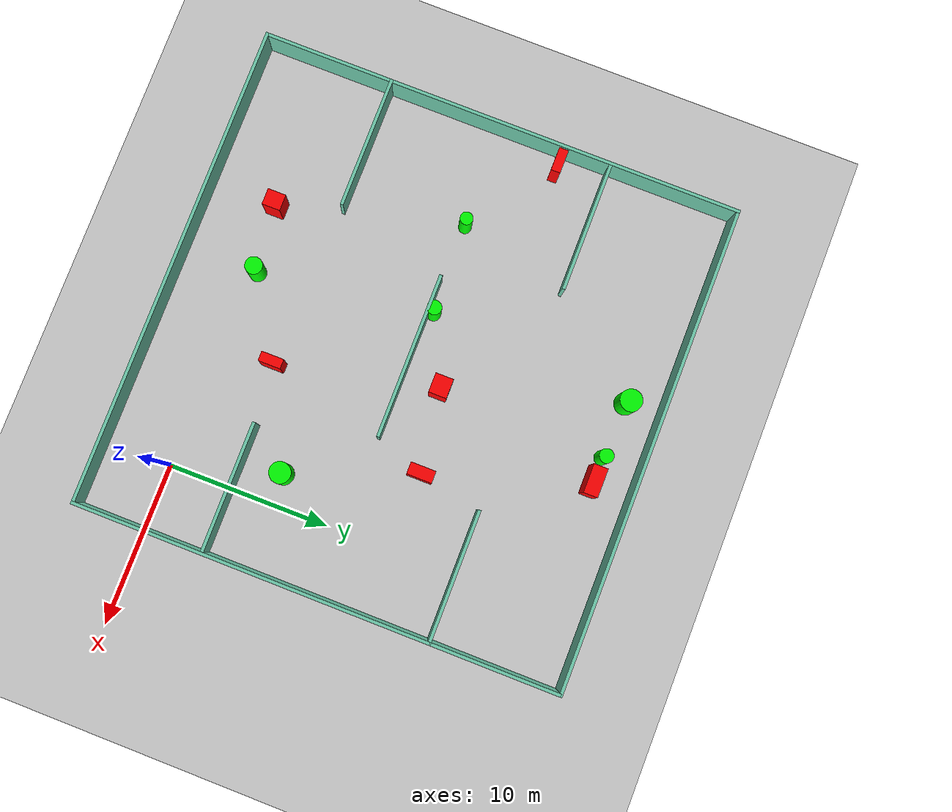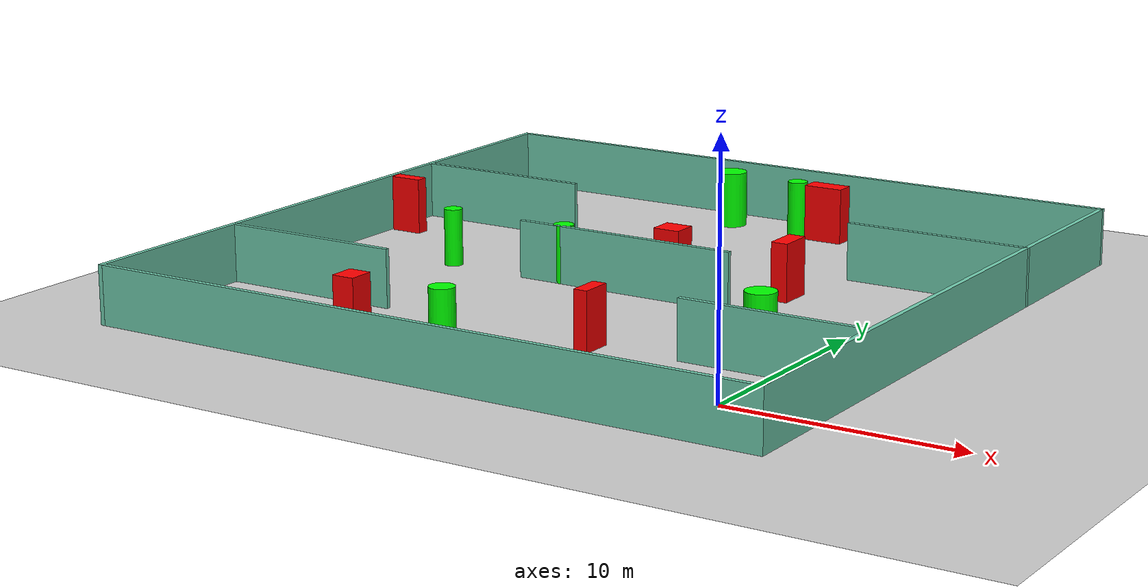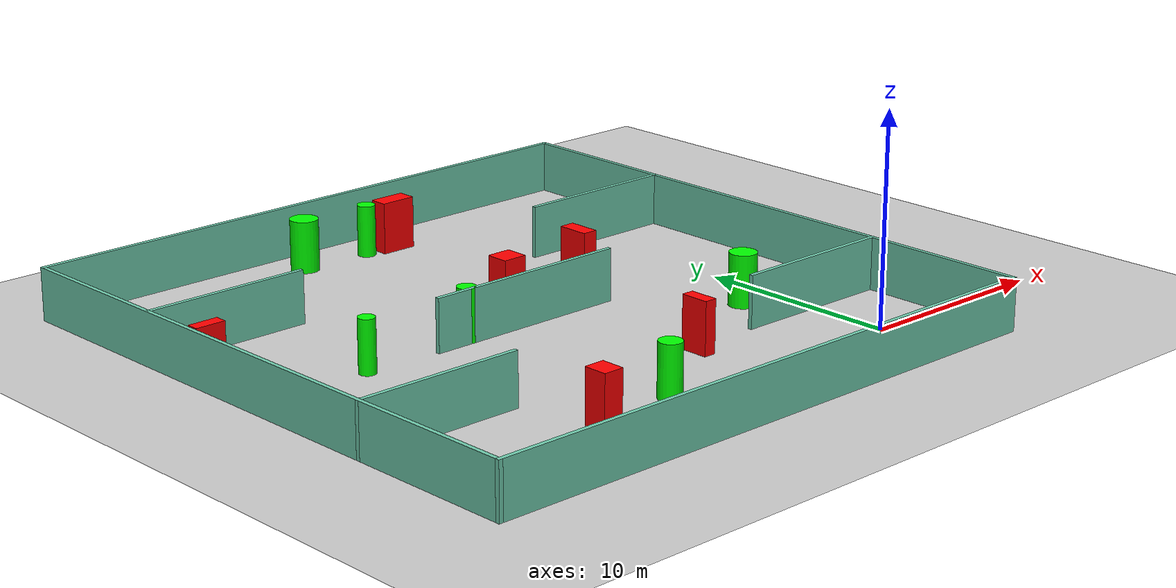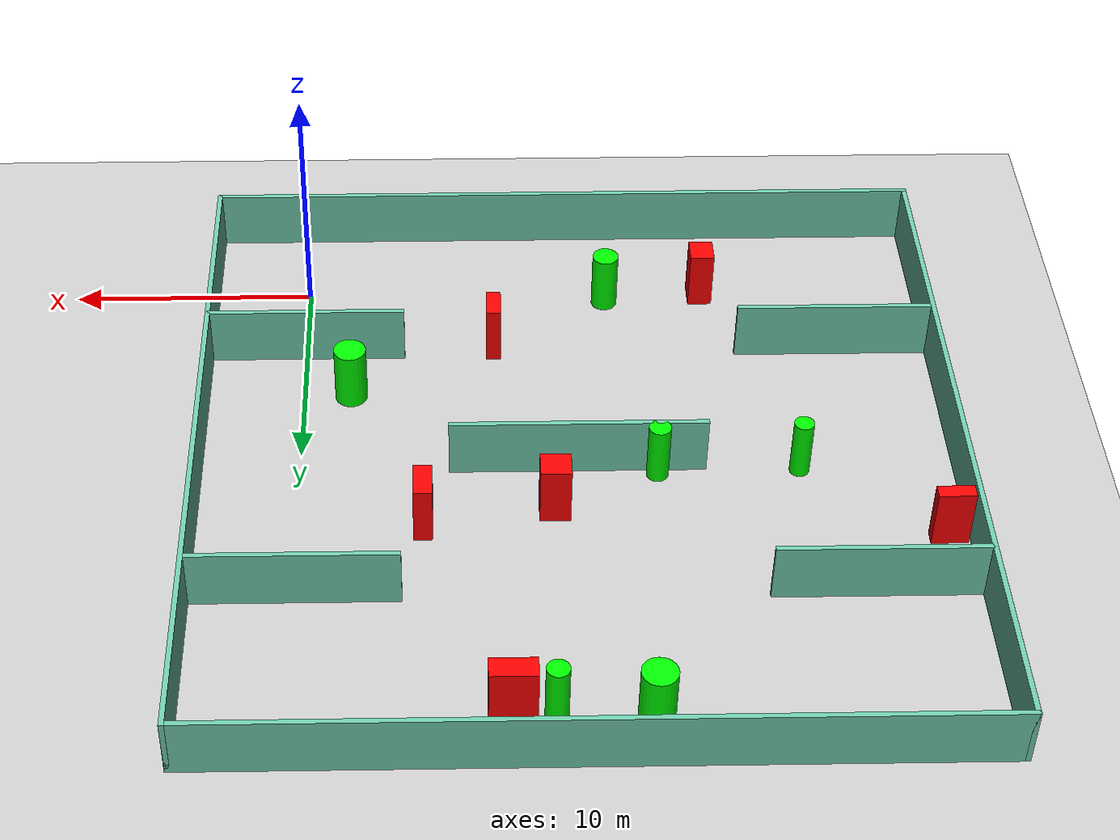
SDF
<sdf version="1.7">
 <world name="default">
  <light name="sun" type="directional">
   <pose>0 0 10 0 -0 0</pose>
   <diffuse>0.8 0.8 0.8 1</diffuse>
   <specular>0.2 0.2 0.2 1</specular>
   <attenuation>
    <range>1000</range>
    <constant>0.9</constant>
    <linear>0.01</linear>
    <quadratic>0.001</quadratic>
   </attenuation>
   <direction>-0.5 0.1 -0.9</direction>
   <spot><inner_angle>0</inner_angle><outer_angle>0</outer_angle><falloff>0</falloff></spot>
  </light>
  <model name="ground_plane">
   <static>1</static>
   <link name="link">
    <collision name="collision">
     <geometry><plane><normal>0 0 1</normal><size>100 100</size></plane></geometry>
     <surface>
      <contact><collide_bitmask>65535</collide_bitmask></contact>
      <friction><ode><mu>100</mu><mu2>50</mu2></ode></friction>
     </surface>
    </collision>
    <visual name="visual">
     <cast_shadows>0</cast_shadows>
     <geometry><plane><normal>0 0 1</normal><size>100 100</size></plane></geometry>
     <material>
      <script><uri>file://media/materials/scripts/gazebo.material</uri><name>Gazebo/Grey</name></script>
     </material>
    </visual>
   </link>
  </model>
  <gravity>0 0 -9.8</gravity>
  <magnetic_field>6e-06 2.3e-05 -4.2e-05</magnetic_field>
  <atmosphere type="adiabatic"/>
  <physics type="ode">
   <max_step_size>0.001</max_step_size>
   <real_time_factor>1</real_time_factor>
   <real_time_update_rate>1000</real_time_update_rate>
  </physics>
  <scene><ambient>0.4 0.4 0.4 1</ambient><background>0.7 0.7 0.7 1</background><shadows>1</shadows></scene>
  <spherical_coordinates>
   <surface_model>EARTH_WGS84</surface_model>
   <latitude_deg>0</latitude_deg>
   <longitude_deg>0</longitude_deg>
   <elevation>0</elevation>
   <heading_deg>0</heading_deg>
  </spherical_coordinates>
  <model name="my_base_walls">
   <link name="Wall_10">
    <collision name="Wall_10_Collision">
     <geometry><box><size>8.2 0.2 2.5</size></box></geometry>
     <pose>0 0 1.25 0 -0 0</pose>
    </collision>
    <visual name="Wall_10_Visual">
     <pose>0 0 1.25 0 -0 0</pose>
     <geometry><box><size>8.2 0.2 2.5</size></box></geometry>
     <material>
      <script><uri>file://media/materials/scripts/gazebo.material</uri><name>Gazebo/Grey</name></script>
      <ambient>0.435294 0.796078 0.67451 1</ambient>
     </material>
     <meta><layer>0</layer></meta>
    </visual>
    <pose>-11 -7 0 0 -0 0</pose>
   </link>
   <link name="Wall_12">
    <collision name="Wall_12_Collision">
     <geometry><box><size>8.2 0.2 2.5</size></box></geometry>
     <pose>0 0 1.25 0 -0 0</pose>
    </collision>
    <visual name="Wall_12_Visual">
     <pose>0 0 1.25 0 -0 0</pose>
     <geometry><box><size>8.2 0.2 2.5</size></box></geometry>
     <material>
      <script><uri>file://media/materials/scripts/gazebo.material</uri><name>Gazebo/Grey</name></script>
      <ambient>0.435294 0.796078 0.67451 1</ambient>
     </material>
     <meta><layer>0</layer></meta>
    </visual>
    <pose>-11 7 0 0 -0 0</pose>
   </link>
   <link name="Wall_14">
    <collision name="Wall_14_Collision">
     <geometry><box><size>8.2 0.2 2.5</size></box></geometry>
     <pose>0 0 1.25 0 -0 0</pose>
    </collision>
    <visual name="Wall_14_Visual">
     <pose>0 0 1.25 0 -0 0</pose>
     <geometry><box><size>8.2 0.2 2.5</size></box></geometry>
     <material>
      <script><uri>file://media/materials/scripts/gazebo.material</uri><name>Gazebo/Grey</name></script>
      <ambient>0.435294 0.796078 0.67451 1</ambient>
     </material>
     <meta><layer>0</layer></meta>
    </visual>
    <pose>11 7 0 0 -0 3.14159</pose>
   </link>
   <link name="Wall_16">
    <collision name="Wall_16_Collision">
     <geometry><box><size>10.2 0.2 2.5</size></box></geometry>
     <pose>0 0 1.25 0 -0 0</pose>
    </collision>
    <visual name="Wall_16_Visual">
     <pose>0 0 1.25 0 -0 0</pose>
     <geometry><box><size>10.2 0.2 2.5</size></box></geometry>
     <material>
      <script><uri>file://media/materials/scripts/gazebo.material</uri><name>Gazebo/Grey</name></script>
      <ambient>0.435294 0.796078 0.67451 1</ambient>
     </material>
     <meta><layer>0</layer></meta>
    </visual>
    <pose>0 0 0 0 -0 3.14159</pose>
   </link>
   <link name="Wall_2">
    <collision name="Wall_2_Collision">
     <geometry><box><size>30.2 0.2 2.5</size></box></geometry>
     <pose>0 0 1.25 0 -0 0</pose>
    </collision>
    <visual name="Wall_2_Visual">
     <pose>0 0 1.25 0 -0 0</pose>
     <geometry><box><size>30.2 0.2 2.5</size></box></geometry>
     <material>
      <script><uri>file://media/materials/scripts/gazebo.material</uri><name>Gazebo/Grey</name></script>
      <ambient>0.435294 0.796078 0.67451 1</ambient>
     </material>
     <meta><layer>0</layer></meta>
    </visual>
    <pose>0 -15 0 0 -0 3.14159</pose>
   </link>
   <link name="Wall_3">
    <collision name="Wall_3_Collision">
     <geometry><box><size>30.2 0.2 2.5</size></box></geometry>
     <pose>0 0 1.25 0 -0 0</pose>
    </collision>
    <visual name="Wall_3_Visual">
     <pose>0 0 1.25 0 -0 0</pose>
     <geometry><box><size>30.2 0.2 2.5</size></box></geometry>
     <material>
      <script><uri>file://media/materials/scripts/gazebo.material</uri><name>Gazebo/Grey</name></script>
      <ambient>0.435294 0.796078 0.67451 1</ambient>
     </material>
     <meta><layer>0</layer></meta>
    </visual>
    <pose>-15 0 0 0 -0 1.5708</pose>
   </link>
   <link name="Wall_4">
    <collision name="Wall_4_Collision">
     <geometry><box><size>30.2 0.2 2.5</size></box></geometry>
     <pose>0 0 1.25 0 -0 0</pose>
    </collision>
    <visual name="Wall_4_Visual">
     <pose>0 0 1.25 0 -0 0</pose>
     <geometry><box><size>30.2 0.2 2.5</size></box></geometry>
     <material>
      <script><uri>file://media/materials/scripts/gazebo.material</uri><name>Gazebo/Grey</name></script>
      <ambient>0.435294 0.796078 0.67451 1</ambient>
     </material>
     <meta><layer>0</layer></meta>
    </visual>
    <pose>0 15 0 0 -0 0</pose>
   </link>
   <link name="Wall_6">
    <collision name="Wall_6_Collision">
     <geometry><box><size>30.2 0.2 2.5</size></box></geometry>
     <pose>0 0 1.25 0 -0 0</pose>
    </collision>
    <visual name="Wall_6_Visual">
     <pose>0 0 1.25 0 -0 0</pose>
     <geometry><box><size>30.2 0.2 2.5</size></box></geometry>
     <material>
      <script><uri>file://media/materials/scripts/gazebo.material</uri><name>Gazebo/Grey</name></script>
      <ambient>0.435294 0.796078 0.67451 1</ambient>
     </material>
     <meta><layer>0</layer></meta>
    </visual>
    <pose>15 0 0 0 -0 1.5708</pose>
   </link>
   <link name="Wall_8">
    <collision name="Wall_8_Collision">
     <geometry><box><size>8.2 0.2 2.5</size></box></geometry>
     <pose>0 0 1.25 0 -0 0</pose>
    </collision>
    <visual name="Wall_8_Visual">
     <pose>0 0 1.25 0 -0 0</pose>
     <geometry><box><size>8.2 0.2 2.5</size></box></geometry>
     <material>
      <script><uri>file://media/materials/scripts/gazebo.material</uri><name>Gazebo/Grey</name></script>
      <ambient>0.435294 0.796078 0.67451 1</ambient>
     </material>
     <meta><layer>0</layer></meta>
    </visual>
    <pose>11 -7 0 0 -0 3.14159</pose>
   </link>
   <static>1</static>
   <pose>-11 11 0 0 -0 0</pose>
  </model>
  <model name="cylinder1">
   <static>1</static>
   <link name="link">
    <inertial>
     <mass>1</mass>
     <inertia><ixx>0.5</ixx><ixy>0</ixy><ixz>0</ixz><iyy>0.5</iyy><iyz>0</iyz><izz>1</izz></inertia>
    </inertial>
    <collision name="collision">
     <geometry><cylinder><radius>0.6552929425147423</radius><length>2.5</length></cylinder></geometry>
    </collision>
    <visual name="visual">
     <geometry><cylinder><radius>0.6552929425147423</radius><length>2.5</length></cylinder></geometry>
     <material>
      <ambient>0 1 0 1</ambient>
      <diffuse>0 1 0 1</diffuse>
      <specular>0.1 0.1 0.1 1</specular>
      <emissive>0 0 0 0</emissive>
     </material>
    </visual>
   </link>
   <pose>-1.9264863801035759 6.484098141874657 1.25 0 0 0</pose>
  </model>
  <model name="cylinder2">
   <static>1</static>
   <link name="link">
    <inertial>
     <mass>1</mass>
     <inertia><ixx>0.5</ixx><ixy>0</ixy><ixz>0</ixz><iyy>0.5</iyy><iyz>0</iyz><izz>1</izz></inertia>
    </inertial>
    <collision name="collision">
     <geometry><cylinder><radius>0.679939043945703</radius><length>2.5</length></cylinder></geometry>
    </collision>
    <visual name="visual">
     <geometry><cylinder><radius>0.679939043945703</radius><length>2.5</length></cylinder></geometry>
     <material>
      <ambient>0 1 0 1</ambient>
      <diffuse>0 1 0 1</diffuse>
      <specular>0.1 0.1 0.1 1</specular>
      <emissive>0 0 0 0</emissive>
     </material>
    </visual>
   </link>
   <pose>-13.194330044774375 23.953327419756825 1.25 0 0 0</pose>
  </model>
  <model name="cylinder3">
   <static>1</static>
   <link name="link">
    <inertial>
     <mass>1</mass>
     <inertia><ixx>0.5</ixx><ixy>0</ixy><ixz>0</ixz><iyy>0.5</iyy><iyz>0</iyz><izz>1</izz></inertia>
    </inertial>
    <collision name="collision">
     <geometry><cylinder><radius>0.39637416205806925</radius><length>2.5</length></cylinder></geometry>
    </collision>
    <visual name="visual">
     <geometry><cylinder><radius>0.39637416205806925</radius><length>2.5</length></cylinder></geometry>
     <material>
      <ambient>0 1 0 1</ambient>
      <diffuse>0 1 0 1</diffuse>
      <specular>0.1 0.1 0.1 1</specular>
      <emissive>0 0 0 0</emissive>
     </material>
    </visual>
   </link>
   <pose>-19.7940200998789 11.182955967713427 1.25 0 0 0</pose>
  </model>
  <model name="cylinder4">
   <static>1</static>
   <link name="link">
    <inertial>
     <mass>1</mass>
     <inertia><ixx>0.5</ixx><ixy>0</ixy><ixz>0</ixz><iyy>0.5</iyy><iyz>0</iyz><izz>1</izz></inertia>
    </inertial>
    <collision name="collision">
     <geometry><cylinder><radius>0.4375945792754347</radius><length>2.5</length></cylinder></geometry>
    </collision>
    <visual name="visual">
     <geometry><cylinder><radius>0.4375945792754347</radius><length>2.5</length></cylinder></geometry>
     <material>
      <ambient>0 1 0 1</ambient>
      <diffuse>0 1 0 1</diffuse>
      <specular>0.1 0.1 0.1 1</specular>
      <emissive>0 0 0 0</emissive>
     </material>
    </visual>
   </link>
   <pose>-9.652455019938756 23.73382175158794 1.25 0 0 0</pose>
  </model>
  <model name="cylinder5">
   <static>1</static>
   <link name="link">
    <inertial>
     <mass>1</mass>
     <inertia><ixx>0.5</ixx><ixy>0</ixy><ixz>0</ixz><iyy>0.5</iyy><iyz>0</iyz><izz>1</izz></inertia>
    </inertial>
    <collision name="collision">
     <geometry><cylinder><radius>0.538766477473571</radius><length>2.5</length></cylinder></geometry>
    </collision>
    <visual name="visual">
     <geometry><cylinder><radius>0.538766477473571</radius><length>2.5</length></cylinder></geometry>
     <material>
      <ambient>0 1 0 1</ambient>
      <diffuse>0 1 0 1</diffuse>
      <specular>0.1 0.1 0.1 1</specular>
      <emissive>0 0 0 0</emissive>
     </material>
    </visual>
   </link>
   <pose>-12.630953164642916 0.5247795097744388 1.25 0 0 0</pose>
  </model>
  <model name="cylinder6">
   <static>1</static>
   <link name="link">
    <inertial>
     <mass>1</mass>
     <inertia><ixx>0.5</ixx><ixy>0</ixy><ixz>0</ixz><iyy>0.5</iyy><iyz>0</iyz><izz>1</izz></inertia>
    </inertial>
    <collision name="collision">
     <geometry><cylinder><radius>0.4437245734080139</radius><length>2.5</length></cylinder></geometry>
    </collision>
    <visual name="visual">
     <geometry><cylinder><radius>0.4437245734080139</radius><length>2.5</length></cylinder></geometry>
     <material>
      <ambient>0 1 0 1</ambient>
      <diffuse>0 1 0 1</diffuse>
      <specular>0.1 0.1 0.1 1</specular>
      <emissive>0 0 0 0</emissive>
     </material>
    </visual>
   </link>
   <pose>-14.14840107825578 11.331528736674063 1.25 0 0 0</pose>
  </model>
  <model name="box1">
   <static>1</static>
   <link name="link">
    <inertial>
     <mass>1</mass>
     <inertia><ixx>0.083</ixx><ixy>0</ixy><ixz>0</ixz><iyy>0.083</iyy><iyz>0</iyz><izz>0.083</izz></inertia>
    </inertial>
    <collision name="collision">
     <geometry><box><size>1.4559751019890954 0.5756283378217804 2.5</size></box></geometry>
    </collision>
    <visual name="visual">
     <geometry><box><size>1.4559751019890954 0.5756283378217804 2.5</size></box></geometry>
     <material>
      <ambient>1 0 0 1</ambient>
      <diffuse>1 0 0 1</diffuse>
      <specular>0.1 0.1 0.1 1</specular>
      <emissive>0 0 0 0</emissive>
     </material>
    </visual>
    <sensor name="my_contact" type="contact">
     <contact><collision>box_collision</collision><topic>__default_topic__</topic></contact>
    </sensor>
   </link>
   <pose>-25.086687287077503 15.08425130238361 1.25 0 0 0</pose>
  </model>
  <model name="box2">
   <static>1</static>
   <link name="link">
    <inertial>
     <mass>1</mass>
     <inertia><ixx>0.083</ixx><ixy>0</ixy><ixz>0</ixz><iyy>0.083</iyy><iyz>0</iyz><izz>0.083</izz></inertia>
    </inertial>
    <collision name="collision">
     <geometry><box><size>0.994570760671406 1.127105425009613 2.5</size></box></geometry>
    </collision>
    <visual name="visual">
     <geometry><box><size>0.994570760671406 1.127105425009613 2.5</size></box></geometry>
     <material>
      <ambient>1 0 0 1</ambient>
      <diffuse>1 0 0 1</diffuse>
      <specular>0.1 0.1 0.1 1</specular>
      <emissive>0 0 0 0</emissive>
     </material>
    </visual>
    <sensor name="my_contact" type="contact">
     <contact><collision>box_collision</collision><topic>__default_topic__</topic></contact>
    </sensor>
   </link>
   <pose>-16.739347251784526 0.15755028565656337 1.25 0 0 0</pose>
  </model>
  <model name="box3">
   <static>1</static>
   <link name="link">
    <inertial>
     <mass>1</mass>
     <inertia><ixx>0.083</ixx><ixy>0</ixy><ixz>0</ixz><iyy>0.083</iyy><iyz>0</iyz><izz>0.083</izz></inertia>
    </inertial>
    <collision name="collision">
     <geometry><box><size>1.2059346530241766 1.1122910734811347 2.5</size></box></geometry>
    </collision>
    <visual name="visual">
     <geometry><box><size>1.2059346530241766 1.1122910734811347 2.5</size></box></geometry>
     <material>
      <ambient>1 0 0 1</ambient>
      <diffuse>1 0 0 1</diffuse>
      <specular>0.1 0.1 0.1 1</specular>
      <emissive>0 0 0 0</emissive>
     </material>
    </visual>
    <sensor name="my_contact" type="contact">
     <contact><collision>box_collision</collision><topic>__default_topic__</topic></contact>
    </sensor>
   </link>
   <pose>-9.999340553192646 13.344316271827534 1.25 0 0 0</pose>
  </model>
  <model name="box4">
   <static>1</static>
   <link name="link">
    <inertial>
     <mass>1</mass>
     <inertia><ixx>0.083</ixx><ixy>0</ixy><ixz>0</ixz><iyy>0.083</iyy><iyz>0</iyz><izz>0.083</izz></inertia>
    </inertial>
    <collision name="collision">
     <geometry><box><size>0.7453301226262108 1.5551048818670439 2.5</size></box></geometry>
    </collision>
    <visual name="visual">
     <geometry><box><size>0.7453301226262108 1.5551048818670439 2.5</size></box></geometry>
     <material>
      <ambient>1 0 0 1</ambient>
      <diffuse>1 0 0 1</diffuse>
      <specular>0.1 0.1 0.1 1</specular>
      <emissive>0 0 0 0</emissive>
     </material>
    </visual>
    <sensor name="my_contact" type="contact">
     <contact><collision>box_collision</collision><topic>__default_topic__</topic></contact>
    </sensor>
   </link>
   <pose>-4.885152820536685 14.092966987630266 1.25 0 0 0</pose>
  </model>
  <model name="box5">
   <static>1</static>
   <link name="link">
    <inertial>
     <mass>1</mass>
     <inertia><ixx>0.083</ixx><ixy>0</ixy><ixz>0</ixz><iyy>0.083</iyy><iyz>0</iyz><izz>0.083</izz></inertia>
    </inertial>
    <collision name="collision">
     <geometry><box><size>0.5975859359779327 1.3813511190065773 2.5</size></box></geometry>
    </collision>
    <visual name="visual">
     <geometry><box><size>0.5975859359779327 1.3813511190065773 2.5</size></box></geometry>
     <material>
      <ambient>1 0 0 1</ambient>
      <diffuse>1 0 0 1</diffuse>
      <specular>0.1 0.1 0.1 1</specular>
      <emissive>0 0 0 0</emissive>
     </material>
    </visual>
    <sensor name="my_contact" type="contact">
     <contact><collision>box_collision</collision><topic>__default_topic__</topic></contact>
    </sensor>
   </link>
   <pose>-7.8123263008145845 3.558123677117379 1.25 0 0 0</pose>
  </model>
  <model name="box6">
   <static>1</static>
   <link name="link">
    <inertial>
     <mass>1</mass>
     <inertia><ixx>0.083</ixx><ixy>0</ixy><ixz>0</ixz><iyy>0.083</iyy><iyz>0</iyz><izz>0.083</izz></inertia>
    </inertial>
    <collision name="collision">
     <geometry><box><size>1.7853517824774912 0.8796513186168013 2.5</size></box></geometry>
    </collision>
    <visual name="visual">
     <geometry><box><size>1.7853517824774912 0.8796513186168013 2.5</size></box></geometry>
     <material>
      <ambient>1 0 0 1</ambient>
      <diffuse>1 0 0 1</diffuse>
      <specular>0.1 0.1 0.1 1</specular>
      <emissive>0 0 0 0</emissive>
     </material>
    </visual>
    <sensor name="my_contact" type="contact">
     <contact><collision>box_collision</collision><topic>__default_topic__</topic></contact>
    </sensor>
   </link>
   <pose>-8.092124669441485 23.64374729197573 1.25 0 0 0</pose>
  </model>
 </world>
</sdf>
